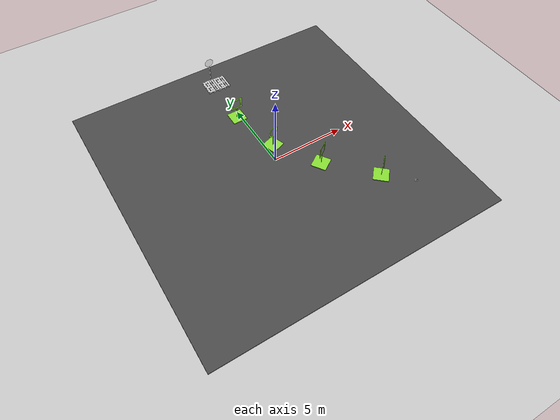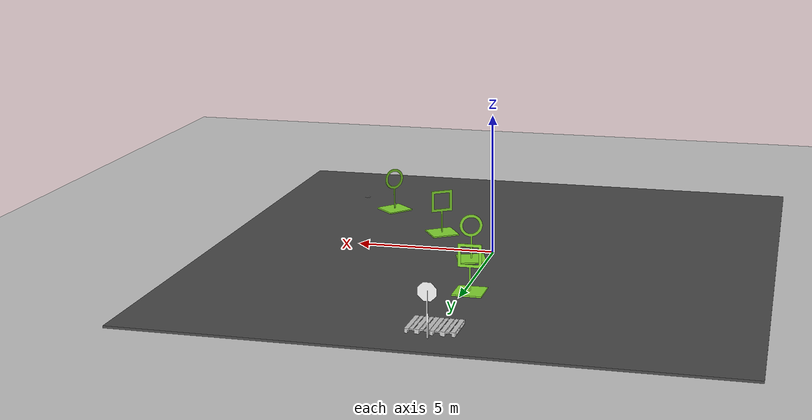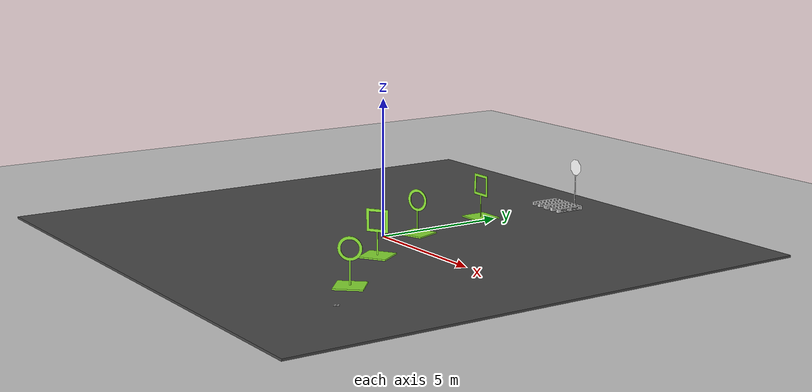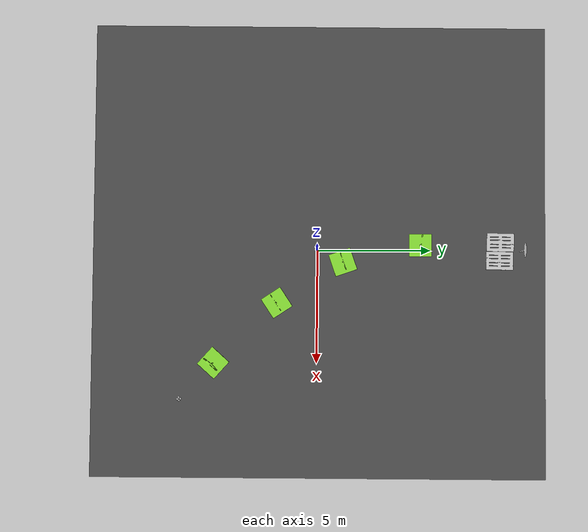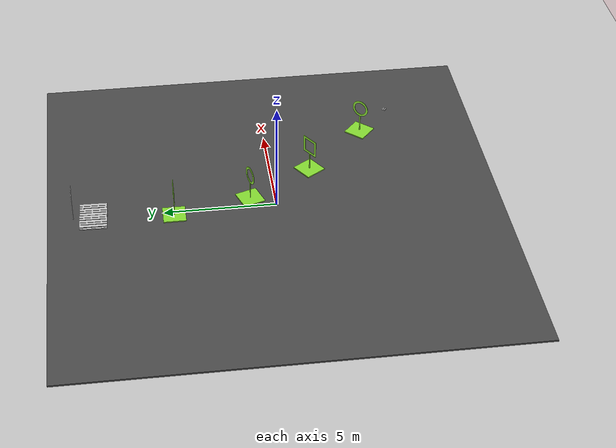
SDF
<sdf version="1.7">
 <world name="default">
  <light name="sun" type="directional">
   <pose>0 0 10 0 -0 0</pose>
   <diffuse>0.8 0.8 0.8 1</diffuse>
   <specular>0.2 0.2 0.2 1</specular>
   <attenuation>
    <range>1000</range>
    <constant>0.9</constant>
    <linear>0.01</linear>
    <quadratic>0.001</quadratic>
   </attenuation>
   <direction>-0.5 0.1 -0.9</direction>
   <spot><inner_angle>0</inner_angle><outer_angle>0</outer_angle><falloff>0</falloff></spot>
  </light>
  <model name="ground_plane">
   <static>1</static>
   <link name="link">
    <collision name="collision">
     <geometry><plane><normal>0 0 1</normal><size>100 100</size></plane></geometry>
     <surface><friction><ode><mu>100</mu><mu2>50</mu2></ode></friction></surface>
    </collision>
    <visual name="visual">
     <cast_shadows>0</cast_shadows>
     <geometry><plane><normal>0 0 1</normal><size>100 100</size></plane></geometry>
     <material>
      <script><uri>file://media/materials/scripts/gazebo.material</uri><name>Gazebo/Grey</name></script>
     </material>
    </visual>
   </link>
  </model>
  <gravity>0 0 -9.8</gravity>
  <magnetic_field>6e-06 2.3e-05 -4.2e-05</magnetic_field>
  <atmosphere type="adiabatic"/>
  <physics type="ode">
   <max_step_size>0.001</max_step_size>
   <real_time_factor>1</real_time_factor>
   <real_time_update_rate>1000</real_time_update_rate>
  </physics>
  <scene><ambient>0.4 0.4 0.4 1</ambient><background>0.7 0.7 0.7 1</background><shadows>1</shadows></scene>
  <spherical_coordinates>
   <surface_model>EARTH_WGS84</surface_model>
   <latitude_deg>0</latitude_deg>
   <longitude_deg>0</longitude_deg>
   <elevation>0</elevation>
   <heading_deg>0</heading_deg>
  </spherical_coordinates>
  <model name="asphalt_plane">
   <static>1</static>
   <link name="link">
    <collision name="collision"><geometry><box><size>20 20 0.1</size></box></geometry></collision>
    <visual name="visual">
     <cast_shadows>0</cast_shadows>
     <geometry><box><size>20 20 0.1</size></box></geometry>
     <material>
      <script>
       <uri>model://asphalt_plane/materials/scripts</uri>
       <uri>model://asphalt_plane/materials/textures</uri>
       <name>vrc/asphalt</name>
      </script>
     </material>
    </visual>
   </link>
   <pose>0.016315 0.077098 0 0 -0 0</pose>
  </model>
  <model name="euro_pallet">
   <link name="link">
    <inertial>
     <mass>20</mass>
     <inertia><ixx>2.43</ixx><ixy>0</ixy><ixz>0</ixz><iyy>1.1</iyy><iyz>0</iyz><izz>3.47</izz></inertia>
    </inertial>
    <collision name="collision">
     <pose>0 0 0.05 0 -0 0</pose>
     <geometry><mesh><uri>model://euro_pallet/meshes/pallet.dae</uri><scale>0.1 0.1 0.1</scale></mesh></geometry>
    </collision>
    <visual name="visual">
     <pose>0 0 0.05 0 -0 0</pose>
     <geometry><mesh><uri>model://euro_pallet/meshes/pallet.dae</uri><scale>0.1 0.1 0.1</scale></mesh></geometry>
    </visual>
   </link>
   <pose>-0.398637 8.07962 0.121995 -8e-06 -0 -0.016682</pose>
  </model>
  <model name="Stop Sign">
   <static>1</static>
   <link name="link">
    <collision name="collision">
     <geometry><mesh><uri>model://stop_sign/meshes/stop_sign.dae</uri></mesh></geometry>
    </collision>
    <visual name="visual">
     <geometry><mesh><uri>model://stop_sign/meshes/stop_sign.dae</uri></mesh></geometry>
     <material>
      <script>
       <uri>model://stop_sign/materials/scripts</uri>
       <uri>model://stop_sign/materials/textures</uri>
       <name>StopSign/Diffuse</name>
      </script>
     </material>
    </visual>
   </link>
   <pose>-0.000501 8.94185 0 0 -0 0</pose>
  </model>
  <model name="euro_pallet_0">
   <link name="link">
    <inertial>
     <mass>20</mass>
     <inertia><ixx>2.43</ixx><ixy>0</ixy><ixz>0</ixz><iyy>1.1</iyy><iyz>0</iyz><izz>3.47</izz></inertia>
    </inertial>
    <collision name="collision">
     <pose>0 0 0.05 0 -0 0</pose>
     <geometry><mesh><uri>model://euro_pallet/meshes/pallet.dae</uri><scale>0.1 0.1 0.1</scale></mesh></geometry>
    </collision>
    <visual name="visual">
     <pose>0 0 0.05 0 -0 0</pose>
     <geometry><mesh><uri>model://euro_pallet/meshes/pallet.dae</uri><scale>0.1 0.1 0.1</scale></mesh></geometry>
    </visual>
   </link>
   <pose>0.410353 8.04537 0.121995 -8e-06 0 -0.016689</pose>
  </model>
  <model name="tello_1">
   <link name="base_link_1">
    <inertial>
     <pose>3e-06 0 0 0 -0 0</pose>
     <mass>0.10001</mass>
     <inertia>
      <ixx>0.000291833</ixx>
      <ixy>0</ixy>
      <ixz>0</ixz>
      <iyy>0.000541012</iyy>
      <iyz>0</iyz>
      <izz>0.000291845</izz>
     </inertia>
    </inertial>
    <collision name="base_link_1_fixed_joint_lump__collision_collision">
     <geometry><box><size>0.18 0.18 0.05</size></box></geometry>
    </collision>
    <collision name="base_link_1_fixed_joint_lump__camera_link_1_collision_1">
     <pose>0.035 0 0 0 -0 0</pose>
     <geometry><sphere><radius>0.01</radius></sphere></geometry>
    </collision>
    <visual name="base_link_1_visual">
     <pose>0 0 0.01 0 -0 0</pose>
     <geometry><box><size>0.07 0.02 0.02</size></box></geometry>
    </visual>
    <visual name="base_link_1_visual_1">
     <pose>0 0 -0.01 0 -0 0</pose>
     <geometry><box><size>0.07 0.02 0.02</size></box></geometry>
    </visual>
    <visual name="base_link_1_visual_2">
     <pose>0.05 -0.05 0 0 -0 0</pose>
     <geometry><cylinder><length>0.01</length><radius>0.045</radius></cylinder></geometry>
    </visual>
    <visual name="base_link_1_visual_3">
     <pose>-0.05 0.05 0 0 -0 0</pose>
     <geometry><cylinder><length>0.01</length><radius>0.045</radius></cylinder></geometry>
    </visual>
    <visual name="base_link_1_visual_4">
     <pose>-0.05 -0.05 0 0 -0 0</pose>
     <geometry><cylinder><length>0.01</length><radius>0.045</radius></cylinder></geometry>
    </visual>
    <visual name="base_link_1_visual_5">
     <pose>0.05 0.05 0 0 -0 0</pose>
     <geometry><cylinder><length>0.01</length><radius>0.045</radius></cylinder></geometry>
    </visual>
    <visual name="base_link_1_fixed_joint_lump__camera_link_1_visual_6">
     <pose>0.035 0 0 0 -0 0</pose>
     <geometry><sphere><radius>0.01</radius></sphere></geometry>
    </visual>
    <sensor name="drone1" type="camera">
     <update_rate>30</update_rate>
     <camera name="head">
      <horizontal_fov>0.96</horizontal_fov>
      <image><width>960</width><height>720</height><format>R8G8B8</format></image>
      <clip><near>0.1</near><far>300</far></clip>
      <noise><type>gaussian</type><mean>0</mean><stddev>0.007</stddev></noise>
     </camera>
     <plugin name="camera_controller_1" filename="libgazebo_ros_camera.so">
      <alwaysOn>1</alwaysOn>
      <updateRate>0.0</updateRate>
      <cameraName>this_is_ignored</cameraName>
      <imageTopicName>image_raw</imageTopicName>
      <cameraInfoTopicName>camera_info</cameraInfoTopicName>
      <frameName>camera_link_1</frameName>
      <hackBaseline>0.07</hackBaseline>
      <distortionK1>0.0</distortionK1>
      <distortionK2>0.0</distortionK2>
      <distortionK3>0.0</distortionK3>
      <distortionT1>0.0</distortionT1>
      <distortionT2>0.0</distortionT2>
     </plugin>
     <pose>0.035 0 0 0 -0 0</pose>
    </sensor>
   </link>
   <plugin name="TelloPlugin" filename="libTelloPlugin.so">
    <namespace>drone1</namespace>
    <parameter name="use_sim_time" type="bool">1</parameter>
    <link_name>base_link_1</link_name>
    <center_of_mass>0 0 0</center_of_mass>
   </plugin>
   <static>0</static>
   <plugin name="ground_truth" filename="libgazebo_ros_p3d.so">
    <frame_name>map</frame_name>
    <body_name>base_link_1</body_name>
    <ros><namespace>/drone1</namespace></ros>
    <update_rate>30.0</update_rate>
   </plugin>
   <pose>6.59327 -6.04258 0.075 0 -0 2.45208</pose>
  </model>
  <model name="square_gate_green">
   <link name="link_0">
    <inertial>
     <mass>1</mass>
     <inertia>
      <ixx>0.166667</ixx>
      <ixy>0</ixy>
      <ixz>0</ixz>
      <iyy>0.166667</iyy>
      <iyz>0</iyz>
      <izz>0.166667</izz>
     </inertia>
    </inertial>
    <visual name="visual">
     <geometry>
      <mesh><uri>model://square_gate_green_short/square_gate_short.dae</uri><scale>1 1 1</scale></mesh>
     </geometry>
     <material>
      <lighting>1</lighting>
      <script><uri>file://media/materials/scripts/gazebo.material</uri><name>Gazebo/Grey</name></script>
      <shader type="pixel"><normal_map>__default__</normal_map></shader>
      <ambient>0.541 0.886 0.204 1</ambient>
      <diffuse>0.7 0.7 0.7 1</diffuse>
      <specular>0.01 0.01 0.01 1</specular>
      <emissive>0 0 0 1</emissive>
     </material>
    </visual>
    <collision name="collision">
     <geometry>
      <mesh><uri>model://square_gate_green_short/square_gate_short.dae</uri><scale>1 1 1</scale></mesh>
     </geometry>
     <surface>
      <friction>
       <ode><mu>1</mu><mu2>1</mu2><fdir1>0 0 0</fdir1><slip1>0</slip1><slip2>0</slip2></ode>
       <torsional>
        <coefficient>1</coefficient>
        <patch_radius>0</patch_radius>
        <surface_radius>0</surface_radius>
        <use_patch_radius>1</use_patch_radius>
        <ode><slip>0</slip></ode>
       </torsional>
      </friction>
      <bounce><restitution_coefficient>0</restitution_coefficient><threshold>1e+06</threshold></bounce>
      <contact>
       <collide_without_contact>0</collide_without_contact>
       <collide_without_contact_bitmask>1</collide_without_contact_bitmask>
       <collide_bitmask>1</collide_bitmask>
       <ode>
        <soft_cfm>0</soft_cfm>
        <soft_erp>0.2</soft_erp>
        <kp>1e+13</kp>
        <kd>1</kd>
        <max_vel>0.01</max_vel>
        <min_depth>0</min_depth>
       </ode>
       <bullet>
        <split_impulse>1</split_impulse>
        <split_impulse_penetration_threshold>-0.01</split_impulse_penetration_threshold>
        <soft_cfm>0</soft_cfm>
        <soft_erp>0.2</soft_erp>
        <kp>1e+13</kp>
        <kd>1</kd>
       </bullet>
      </contact>
     </surface>
    </collision>
   </link>
   <static>0</static>
   <pose>2.34366 -1.77928 0.05 0 -0 0.584424</pose>
  </model>
  <model name="circle_gate_green_short">
   <link name="link_0">
    <inertial>
     <mass>1</mass>
     <inertia>
      <ixx>0.166667</ixx>
      <ixy>0</ixy>
      <ixz>0</ixz>
      <iyy>0.166667</iyy>
      <iyz>0</iyz>
      <izz>0.166667</izz>
     </inertia>
    </inertial>
    <visual name="visual">
     <geometry>
      <mesh><uri>model://circle_gate_green_short/circle_gate_short.dae</uri><scale>1 1 1</scale></mesh>
     </geometry>
     <material>
      <lighting>1</lighting>
      <script><uri>file://media/materials/scripts/gazebo.material</uri><name>Gazebo/Grey</name></script>
      <shader type="pixel"><normal_map>__default__</normal_map></shader>
      <ambient>0.541 0.886 0.204 1</ambient>
      <diffuse>0.7 0.7 0.7 1</diffuse>
      <specular>0.01 0.01 0.01 1</specular>
      <emissive>0 0 0 1</emissive>
     </material>
    </visual>
    <collision name="collision">
     <geometry>
      <mesh><uri>model://circle_gate_green_short/circle_gate_short.dae</uri><scale>1 1 1</scale></mesh>
     </geometry>
     <surface>
      <friction>
       <ode><mu>1</mu><mu2>1</mu2><fdir1>0 0 0</fdir1><slip1>0</slip1><slip2>0</slip2></ode>
       <torsional>
        <coefficient>1</coefficient>
        <patch_radius>0</patch_radius>
        <surface_radius>0</surface_radius>
        <use_patch_radius>1</use_patch_radius>
        <ode><slip>0</slip></ode>
       </torsional>
      </friction>
      <bounce><restitution_coefficient>0</restitution_coefficient><threshold>1e+06</threshold></bounce>
      <contact>
       <collide_without_contact>0</collide_without_contact>
       <collide_without_contact_bitmask>1</collide_without_contact_bitmask>
       <collide_bitmask>1</collide_bitmask>
       <ode>
        <soft_cfm>0</soft_cfm>
        <soft_erp>0.2</soft_erp>
        <kp>1e+13</kp>
        <kd>1</kd>
        <max_vel>0.01</max_vel>
        <min_depth>0</min_depth>
       </ode>
       <bullet>
        <split_impulse>1</split_impulse>
        <split_impulse_penetration_threshold>-0.01</split_impulse_penetration_threshold>
        <soft_cfm>0</soft_cfm>
        <soft_erp>0.2</soft_erp>
        <kp>1e+13</kp>
        <kd>1</kd>
       </bullet>
      </contact>
     </surface>
    </collision>
   </link>
   <static>0</static>
   <pose>5.00541 -4.5547 0.05 0 -0 0.841149</pose>
  </model>
  <model name="square_gate_green_0">
   <link name="link_0">
    <inertial>
     <mass>1</mass>
     <inertia>
      <ixx>0.166667</ixx>
      <ixy>0</ixy>
      <ixz>0</ixz>
      <iyy>0.166667</iyy>
      <iyz>0</iyz>
      <izz>0.166667</izz>
     </inertia>
    </inertial>
    <visual name="visual">
     <geometry>
      <mesh><uri>model://square_gate_green_short/square_gate_short.dae</uri><scale>1 1 1</scale></mesh>
     </geometry>
     <material>
      <lighting>1</lighting>
      <script><uri>file://media/materials/scripts/gazebo.material</uri><name>Gazebo/Grey</name></script>
      <shader type="pixel"><normal_map>__default__</normal_map></shader>
      <ambient>0.541 0.886 0.204 1</ambient>
      <diffuse>0.7 0.7 0.7 1</diffuse>
      <specular>0.01 0.01 0.01 1</specular>
      <emissive>0 0 0 1</emissive>
     </material>
    </visual>
    <collision name="collision">
     <geometry>
      <mesh><uri>model://square_gate_green_short/square_gate_short.dae</uri><scale>1 1 1</scale></mesh>
     </geometry>
     <surface>
      <friction>
       <ode><mu>1</mu><mu2>1</mu2><fdir1>0 0 0</fdir1><slip1>0</slip1><slip2>0</slip2></ode>
       <torsional>
        <coefficient>1</coefficient>
        <patch_radius>0</patch_radius>
        <surface_radius>0</surface_radius>
        <use_patch_radius>1</use_patch_radius>
        <ode><slip>0</slip></ode>
       </torsional>
      </friction>
      <bounce><restitution_coefficient>0</restitution_coefficient><threshold>1e+06</threshold></bounce>
      <contact>
       <collide_without_contact>0</collide_without_contact>
       <collide_without_contact_bitmask>1</collide_without_contact_bitmask>
       <collide_bitmask>1</collide_bitmask>
       <ode>
        <soft_cfm>0</soft_cfm>
        <soft_erp>0.2</soft_erp>
        <kp>1e+13</kp>
        <kd>1</kd>
        <max_vel>0.01</max_vel>
        <min_depth>0</min_depth>
       </ode>
       <bullet>
        <split_impulse>1</split_impulse>
        <split_impulse_penetration_threshold>-0.01</split_impulse_penetration_threshold>
        <soft_cfm>0</soft_cfm>
        <soft_erp>0.2</soft_erp>
        <kp>1e+13</kp>
        <kd>1</kd>
       </bullet>
      </contact>
     </surface>
    </collision>
   </link>
   <static>0</static>
   <pose>-0.245563 4.55185 0.05 0 0 -1.3e-05</pose>
  </model>
  <model name="circle_gate_green_short_0">
   <link name="link_0">
    <inertial>
     <mass>1</mass>
     <inertia>
      <ixx>0.166667</ixx>
      <ixy>0</ixy>
      <ixz>0</ixz>
      <iyy>0.166667</iyy>
      <iyz>0</iyz>
      <izz>0.166667</izz>
     </inertia>
    </inertial>
    <visual name="visual">
     <geometry>
      <mesh><uri>model://circle_gate_green_short/circle_gate_short.dae</uri><scale>1 1 1</scale></mesh>
     </geometry>
     <material>
      <lighting>1</lighting>
      <script><uri>file://media/materials/scripts/gazebo.material</uri><name>Gazebo/Grey</name></script>
      <shader type="pixel"><normal_map>__default__</normal_map></shader>
      <ambient>0.541 0.886 0.204 1</ambient>
      <diffuse>0.7 0.7 0.7 1</diffuse>
      <specular>0.01 0.01 0.01 1</specular>
      <emissive>0 0 0 1</emissive>
     </material>
    </visual>
    <collision name="collision">
     <geometry>
      <mesh><uri>model://circle_gate_green_short/circle_gate_short.dae</uri><scale>1 1 1</scale></mesh>
     </geometry>
     <surface>
      <friction>
       <ode><mu>1</mu><mu2>1</mu2><fdir1>0 0 0</fdir1><slip1>0</slip1><slip2>0</slip2></ode>
       <torsional>
        <coefficient>1</coefficient>
        <patch_radius>0</patch_radius>
        <surface_radius>0</surface_radius>
        <use_patch_radius>1</use_patch_radius>
        <ode><slip>0</slip></ode>
       </torsional>
      </friction>
      <bounce><restitution_coefficient>0</restitution_coefficient><threshold>1e+06</threshold></bounce>
      <contact>
       <collide_without_contact>0</collide_without_contact>
       <collide_without_contact_bitmask>1</collide_without_contact_bitmask>
       <collide_bitmask>1</collide_bitmask>
       <ode>
        <soft_cfm>0</soft_cfm>
        <soft_erp>0.2</soft_erp>
        <kp>1e+13</kp>
        <kd>1</kd>
        <max_vel>0.01</max_vel>
        <min_depth>0</min_depth>
       </ode>
       <bullet>
        <split_impulse>1</split_impulse>
        <split_impulse_penetration_threshold>-0.01</split_impulse_penetration_threshold>
        <soft_cfm>0</soft_cfm>
        <soft_erp>0.2</soft_erp>
        <kp>1e+13</kp>
        <kd>1</kd>
       </bullet>
      </contact>
     </surface>
    </collision>
   </link>
   <static>0</static>
   <pose>0.526019 1.12884 0.05 0 -0 0.335365</pose>
  </model>
 </world>
</sdf>
